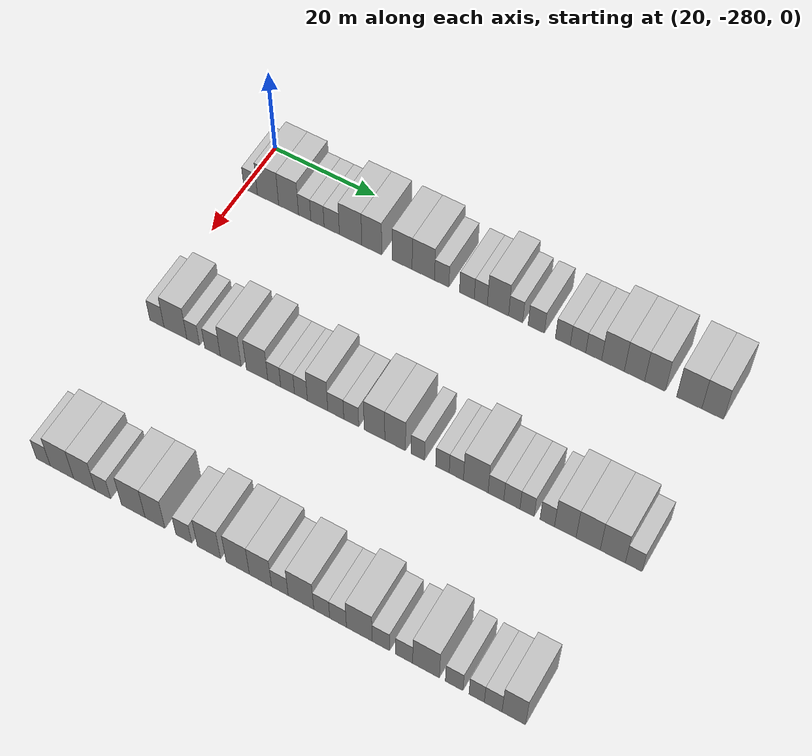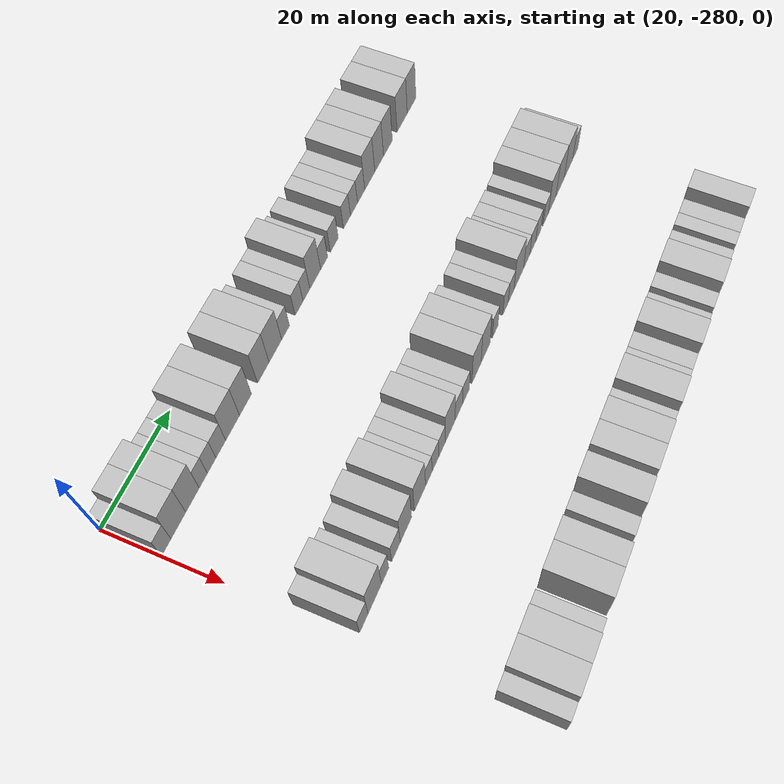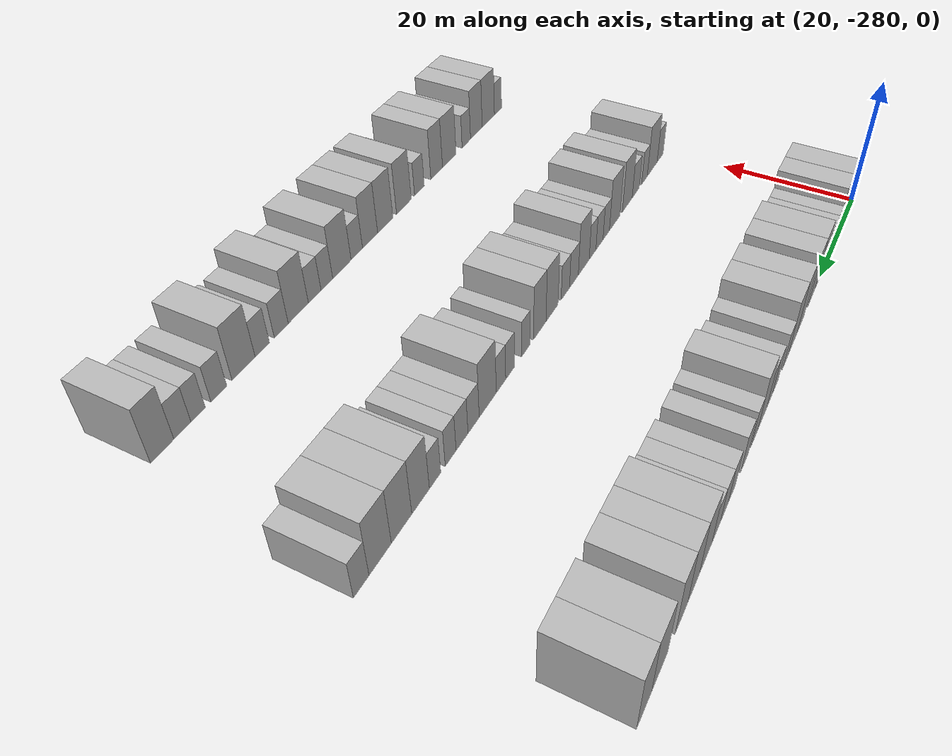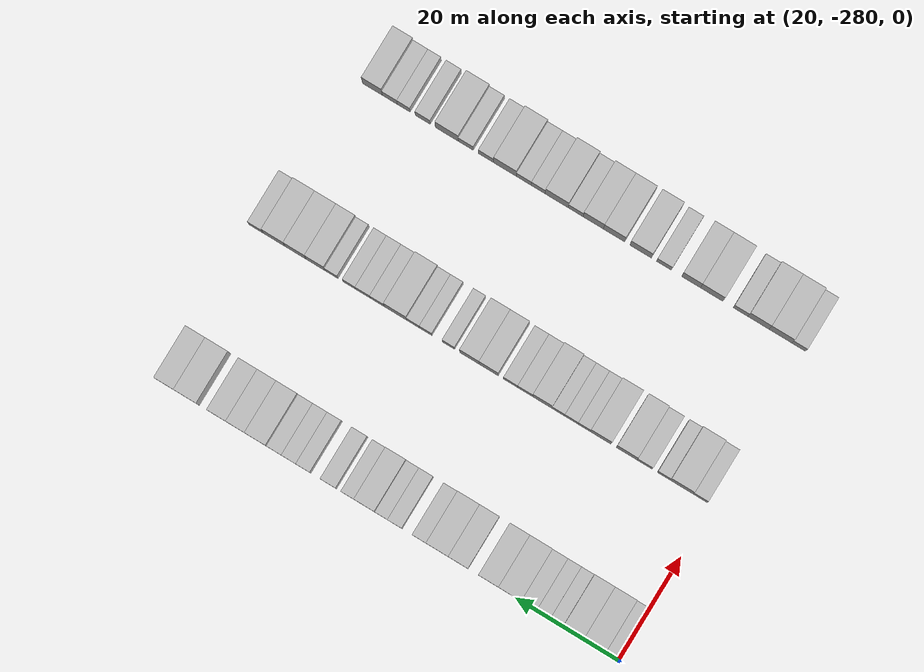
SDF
<sdf version="1.6">
 <world name="default">
  <model name="building_1">
   <static>1</static>
   <pose>25.0000 -278.6493 0 0.000000 0.000000 0.000000</pose>
   <link name="link">
    <pose>0 0 3.00 0 0 0</pose>
    <collision name="collision"><geometry><box><size>10.0000 2.7014 6.0000</size></box></geometry></collision>
    <visual name="visual">
     <cast_shadows>0</cast_shadows>
     <geometry><box><size>10.0000 2.7014 6.0000</size></box></geometry>
     <material>
      <script>
       <uri>model://HANNAS_wall/materials/scripts</uri>
       <uri>model://HANNAS_wall/materials/textures</uri>
       <name>vrc/HANNAS_wall</name>
      </script>
     </material>
    </visual>
   </link>
  </model>
  <model name="building_2">
   <static>1</static>
   <pose>25.0000 -275.1745 0 0.000000 0.000000 0.000000</pose>
   <link name="link">
    <pose>0 0 4.50 0 0 0</pose>
    <collision name="collision"><geometry><box><size>10.0000 4.2482 9.0000</size></box></geometry></collision>
    <visual name="visual">
     <cast_shadows>0</cast_shadows>
     <geometry><box><size>10.0000 4.2482 9.0000</size></box></geometry>
     <material>
      <script>
       <uri>model://HANNAS_wall/materials/scripts</uri>
       <uri>model://HANNAS_wall/materials/textures</uri>
       <name>vrc/HANNAS_wall</name>
      </script>
     </material>
    </visual>
   </link>
  </model>
  <model name="building_3">
   <static>1</static>
   <pose>25.0000 -271.0748 0 0.000000 0.000000 0.000000</pose>
   <link name="link">
    <pose>0 0 4.50 0 0 0</pose>
    <collision name="collision"><geometry><box><size>10.0000 3.9511 9.0000</size></box></geometry></collision>
    <visual name="visual">
     <cast_shadows>0</cast_shadows>
     <geometry><box><size>10.0000 3.9511 9.0000</size></box></geometry>
     <material>
      <script>
       <uri>model://HANNAS_wall/materials/scripts</uri>
       <uri>model://HANNAS_wall/materials/textures</uri>
       <name>vrc/HANNAS_wall</name>
      </script>
     </material>
    </visual>
   </link>
  </model>
  <model name="building_4">
   <static>1</static>
   <pose>25.0000 -267.8792 0 0.000000 0.000000 0.000000</pose>
   <link name="link">
    <pose>0 0 3.00 0 0 0</pose>
    <collision name="collision"><geometry><box><size>10.0000 2.4400 6.0000</size></box></geometry></collision>
    <visual name="visual">
     <cast_shadows>0</cast_shadows>
     <geometry><box><size>10.0000 2.4400 6.0000</size></box></geometry>
     <material>
      <script>
       <uri>model://HANNAS_wall/materials/scripts</uri>
       <uri>model://HANNAS_wall/materials/textures</uri>
       <name>vrc/HANNAS_wall</name>
      </script>
     </material>
    </visual>
   </link>
  </model>
  <model name="building_5">
   <static>1</static>
   <pose>25.0000 -265.3566 0 0.000000 0.000000 0.000000</pose>
   <link name="link">
    <pose>0 0 3.00 0 0 0</pose>
    <collision name="collision"><geometry><box><size>10.0000 2.6051 6.0000</size></box></geometry></collision>
    <visual name="visual">
     <cast_shadows>0</cast_shadows>
     <geometry><box><size>10.0000 2.6051 6.0000</size></box></geometry>
     <material>
      <script>
       <uri>model://HANNAS_wall/materials/scripts</uri>
       <uri>model://HANNAS_wall/materials/textures</uri>
       <name>vrc/HANNAS_wall</name>
      </script>
     </material>
    </visual>
   </link>
  </model>
  <model name="building_6">
   <static>1</static>
   <pose>25.0000 -262.5599 0 0.000000 0.000000 0.000000</pose>
   <link name="link">
    <pose>0 0 3.00 0 0 0</pose>
    <collision name="collision"><geometry><box><size>10.0000 2.9883 6.0000</size></box></geometry></collision>
    <visual name="visual">
     <cast_shadows>0</cast_shadows>
     <geometry><box><size>10.0000 2.9883 6.0000</size></box></geometry>
     <material>
      <script>
       <uri>model://HANNAS_wall/materials/scripts</uri>
       <uri>model://HANNAS_wall/materials/textures</uri>
       <name>vrc/HANNAS_wall</name>
      </script>
     </material>
    </visual>
   </link>
  </model>
  <model name="building_7">
   <static>1</static>
   <pose>25.0000 -258.8811 0 0.000000 0.000000 0.000000</pose>
   <link name="link">
    <pose>0 0 4.50 0 0 0</pose>
    <collision name="collision"><geometry><box><size>10.0000 4.3694 9.0000</size></box></geometry></collision>
    <visual name="visual">
     <cast_shadows>0</cast_shadows>
     <geometry><box><size>10.0000 4.3694 9.0000</size></box></geometry>
     <material>
      <script>
       <uri>model://HANNAS_wall/materials/scripts</uri>
       <uri>model://HANNAS_wall/materials/textures</uri>
       <name>vrc/HANNAS_wall</name>
      </script>
     </material>
    </visual>
   </link>
  </model>
  <model name="building_8">
   <static>1</static>
   <pose>25.0000 -254.7702 0 0.000000 0.000000 0.000000</pose>
   <link name="link">
    <pose>0 0 4.50 0 0 0</pose>
    <collision name="collision"><geometry><box><size>10.0000 3.8524 9.0000</size></box></geometry></collision>
    <visual name="visual">
     <cast_shadows>0</cast_shadows>
     <geometry><box><size>10.0000 3.8524 9.0000</size></box></geometry>
     <material>
      <script>
       <uri>model://HANNAS_wall/materials/scripts</uri>
       <uri>model://HANNAS_wall/materials/textures</uri>
       <name>vrc/HANNAS_wall</name>
      </script>
     </material>
    </visual>
   </link>
  </model>
  <model name="building_9">
   <static>1</static>
   <pose>25.0000 -248.9392 0 0.000000 0.000000 0.000000</pose>
   <link name="link">
    <pose>0 0 4.50 0 0 0</pose>
    <collision name="collision"><geometry><box><size>10.0000 3.8097 9.0000</size></box></geometry></collision>
    <visual name="visual">
     <cast_shadows>0</cast_shadows>
     <geometry><box><size>10.0000 3.8097 9.0000</size></box></geometry>
     <material>
      <script>
       <uri>model://HANNAS_wall/materials/scripts</uri>
       <uri>model://HANNAS_wall/materials/textures</uri>
       <name>vrc/HANNAS_wall</name>
      </script>
     </material>
    </visual>
   </link>
  </model>
  <model name="building_10">
   <static>1</static>
   <pose>25.0000 -244.8986 0 0.000000 0.000000 0.000000</pose>
   <link name="link">
    <pose>0 0 4.50 0 0 0</pose>
    <collision name="collision"><geometry><box><size>10.0000 4.2715 9.0000</size></box></geometry></collision>
    <visual name="visual">
     <cast_shadows>0</cast_shadows>
     <geometry><box><size>10.0000 4.2715 9.0000</size></box></geometry>
     <material>
      <script>
       <uri>model://HANNAS_wall/materials/scripts</uri>
       <uri>model://HANNAS_wall/materials/textures</uri>
       <name>vrc/HANNAS_wall</name>
      </script>
     </material>
    </visual>
   </link>
  </model>
  <model name="building_11">
   <static>1</static>
   <pose>25.0000 -241.4054 0 0.000000 0.000000 0.000000</pose>
   <link name="link">
    <pose>0 0 3.00 0 0 0</pose>
    <collision name="collision"><geometry><box><size>10.0000 2.7150 6.0000</size></box></geometry></collision>
    <visual name="visual">
     <cast_shadows>0</cast_shadows>
     <geometry><box><size>10.0000 2.7150 6.0000</size></box></geometry>
     <material>
      <script>
       <uri>model://HANNAS_wall/materials/scripts</uri>
       <uri>model://HANNAS_wall/materials/textures</uri>
       <name>vrc/HANNAS_wall</name>
      </script>
     </material>
    </visual>
   </link>
  </model>
  <model name="building_12">
   <static>1</static>
   <pose>25.0000 -236.6688 0 0.000000 0.000000 0.000000</pose>
   <link name="link">
    <pose>0 0 3.00 0 0 0</pose>
    <collision name="collision"><geometry><box><size>10.0000 2.7581 6.0000</size></box></geometry></collision>
    <visual name="visual">
     <cast_shadows>0</cast_shadows>
     <geometry><box><size>10.0000 2.7581 6.0000</size></box></geometry>
     <material>
      <script>
       <uri>model://HANNAS_wall/materials/scripts</uri>
       <uri>model://HANNAS_wall/materials/textures</uri>
       <name>vrc/HANNAS_wall</name>
      </script>
     </material>
    </visual>
   </link>
  </model>
  <model name="building_13">
   <static>1</static>
   <pose>25.0000 -234.0657 0 0.000000 0.000000 0.000000</pose>
   <link name="link">
    <pose>0 0 3.00 0 0 0</pose>
    <collision name="collision"><geometry><box><size>10.0000 2.4483 6.0000</size></box></geometry></collision>
    <visual name="visual">
     <cast_shadows>0</cast_shadows>
     <geometry><box><size>10.0000 2.4483 6.0000</size></box></geometry>
     <material>
      <script>
       <uri>model://HANNAS_wall/materials/scripts</uri>
       <uri>model://HANNAS_wall/materials/textures</uri>
       <name>vrc/HANNAS_wall</name>
      </script>
     </material>
    </visual>
   </link>
  </model>
  <model name="building_14">
   <static>1</static>
   <pose>25.0000 -230.8664 0 0.000000 0.000000 0.000000</pose>
   <link name="link">
    <pose>0 0 4.50 0 0 0</pose>
    <collision name="collision"><geometry><box><size>10.0000 3.9503 9.0000</size></box></geometry></collision>
    <visual name="visual">
     <cast_shadows>0</cast_shadows>
     <geometry><box><size>10.0000 3.9503 9.0000</size></box></geometry>
     <material>
      <script>
       <uri>model://HANNAS_wall/materials/scripts</uri>
       <uri>model://HANNAS_wall/materials/textures</uri>
       <name>vrc/HANNAS_wall</name>
      </script>
     </material>
    </visual>
   </link>
  </model>
  <model name="building_15">
   <static>1</static>
   <pose>25.0000 -227.5878 0 0.000000 0.000000 0.000000</pose>
   <link name="link">
    <pose>0 0 3.00 0 0 0</pose>
    <collision name="collision"><geometry><box><size>10.0000 2.6067 6.0000</size></box></geometry></collision>
    <visual name="visual">
     <cast_shadows>0</cast_shadows>
     <geometry><box><size>10.0000 2.6067 6.0000</size></box></geometry>
     <material>
      <script>
       <uri>model://HANNAS_wall/materials/scripts</uri>
       <uri>model://HANNAS_wall/materials/textures</uri>
       <name>vrc/HANNAS_wall</name>
      </script>
     </material>
    </visual>
   </link>
  </model>
  <model name="building_16">
   <static>1</static>
   <pose>25.0000 -223.7880 0 0.000000 0.000000 0.000000</pose>
   <link name="link">
    <pose>0 0 3.00 0 0 0</pose>
    <collision name="collision"><geometry><box><size>10.0000 2.9929 6.0000</size></box></geometry></collision>
    <visual name="visual">
     <cast_shadows>0</cast_shadows>
     <geometry><box><size>10.0000 2.9929 6.0000</size></box></geometry>
     <material>
      <script>
       <uri>model://HANNAS_wall/materials/scripts</uri>
       <uri>model://HANNAS_wall/materials/textures</uri>
       <name>vrc/HANNAS_wall</name>
      </script>
     </material>
    </visual>
   </link>
  </model>
  <model name="building_17">
   <static>1</static>
   <pose>25.0000 -218.9373 0 0.000000 0.000000 0.000000</pose>
   <link name="link">
    <pose>0 0 3.00 0 0 0</pose>
    <collision name="collision"><geometry><box><size>10.0000 2.7085 6.0000</size></box></geometry></collision>
    <visual name="visual">
     <cast_shadows>0</cast_shadows>
     <geometry><box><size>10.0000 2.7085 6.0000</size></box></geometry>
     <material>
      <script>
       <uri>model://HANNAS_wall/materials/scripts</uri>
       <uri>model://HANNAS_wall/materials/textures</uri>
       <name>vrc/HANNAS_wall</name>
      </script>
     </material>
    </visual>
   </link>
  </model>
  <model name="building_18">
   <static>1</static>
   <pose>25.0000 -216.1864 0 0.000000 0.000000 0.000000</pose>
   <link name="link">
    <pose>0 0 3.00 0 0 0</pose>
    <collision name="collision"><geometry><box><size>10.0000 2.7932 6.0000</size></box></geometry></collision>
    <visual name="visual">
     <cast_shadows>0</cast_shadows>
     <geometry><box><size>10.0000 2.7932 6.0000</size></box></geometry>
     <material>
      <script>
       <uri>model://HANNAS_wall/materials/scripts</uri>
       <uri>model://HANNAS_wall/materials/textures</uri>
       <name>vrc/HANNAS_wall</name>
      </script>
     </material>
    </visual>
   </link>
  </model>
  <model name="building_19">
   <static>1</static>
   <pose>25.0000 -213.3558 0 0.000000 0.000000 0.000000</pose>
   <link name="link">
    <pose>0 0 3.00 0 0 0</pose>
    <collision name="collision"><geometry><box><size>10.0000 2.8680 6.0000</size></box></geometry></collision>
    <visual name="visual">
     <cast_shadows>0</cast_shadows>
     <geometry><box><size>10.0000 2.8680 6.0000</size></box></geometry>
     <material>
      <script>
       <uri>model://HANNAS_wall/materials/scripts</uri>
       <uri>model://HANNAS_wall/materials/textures</uri>
       <name>vrc/HANNAS_wall</name>
      </script>
     </material>
    </visual>
   </link>
  </model>
  <model name="building_20">
   <static>1</static>
   <pose>25.0000 -209.8904 0 0.000000 0.000000 0.000000</pose>
   <link name="link">
    <pose>0 0 4.50 0 0 0</pose>
    <collision name="collision"><geometry><box><size>10.0000 4.0627 9.0000</size></box></geometry></collision>
    <visual name="visual">
     <cast_shadows>0</cast_shadows>
     <geometry><box><size>10.0000 4.0627 9.0000</size></box></geometry>
     <material>
      <script>
       <uri>model://HANNAS_wall/materials/scripts</uri>
       <uri>model://HANNAS_wall/materials/textures</uri>
       <name>vrc/HANNAS_wall</name>
      </script>
     </material>
    </visual>
   </link>
  </model>
  <model name="building_21">
   <static>1</static>
   <pose>25.0000 -206.0500 0 0.000000 0.000000 0.000000</pose>
   <link name="link">
    <pose>0 0 4.50 0 0 0</pose>
    <collision name="collision"><geometry><box><size>10.0000 3.6181 9.0000</size></box></geometry></collision>
    <visual name="visual">
     <cast_shadows>0</cast_shadows>
     <geometry><box><size>10.0000 3.6181 9.0000</size></box></geometry>
     <material>
      <script>
       <uri>model://HANNAS_wall/materials/scripts</uri>
       <uri>model://HANNAS_wall/materials/textures</uri>
       <name>vrc/HANNAS_wall</name>
      </script>
     </material>
    </visual>
   </link>
  </model>
  <model name="building_22">
   <static>1</static>
   <pose>25.0000 -202.4100 0 0.000000 0.000000 0.000000</pose>
   <link name="link">
    <pose>0 0 4.50 0 0 0</pose>
    <collision name="collision"><geometry><box><size>10.0000 3.6619 9.0000</size></box></geometry></collision>
    <visual name="visual">
     <cast_shadows>0</cast_shadows>
     <geometry><box><size>10.0000 3.6619 9.0000</size></box></geometry>
     <material>
      <script>
       <uri>model://HANNAS_wall/materials/scripts</uri>
       <uri>model://HANNAS_wall/materials/textures</uri>
       <name>vrc/HANNAS_wall</name>
      </script>
     </material>
    </visual>
   </link>
  </model>
  <model name="building_23">
   <static>1</static>
   <pose>25.0000 -196.3840 0 0.000000 0.000000 0.000000</pose>
   <link name="link">
    <pose>0 0 4.50 0 0 0</pose>
    <collision name="collision"><geometry><box><size>10.0000 4.3901 9.0000</size></box></geometry></collision>
    <visual name="visual">
     <cast_shadows>0</cast_shadows>
     <geometry><box><size>10.0000 4.3901 9.0000</size></box></geometry>
     <material>
      <script>
       <uri>model://HANNAS_wall/materials/scripts</uri>
       <uri>model://HANNAS_wall/materials/textures</uri>
       <name>vrc/HANNAS_wall</name>
      </script>
     </material>
    </visual>
   </link>
  </model>
  <model name="building_24">
   <static>1</static>
   <pose>25.0000 -192.2875 0 0.000000 0.000000 0.000000</pose>
   <link name="link">
    <pose>0 0 4.50 0 0 0</pose>
    <collision name="collision"><geometry><box><size>10.0000 3.8027 9.0000</size></box></geometry></collision>
    <visual name="visual">
     <cast_shadows>0</cast_shadows>
     <geometry><box><size>10.0000 3.8027 9.0000</size></box></geometry>
     <material>
      <script>
       <uri>model://HANNAS_wall/materials/scripts</uri>
       <uri>model://HANNAS_wall/materials/textures</uri>
       <name>vrc/HANNAS_wall</name>
      </script>
     </material>
    </visual>
   </link>
  </model>
  <model name="building_150">
   <static>1</static>
   <pose>55.0000 -277.6123 0 0.000000 0.000000 0.000000</pose>
   <link name="link">
    <pose>0 0 3.00 0 0 0</pose>
    <collision name="collision"><geometry><box><size>10.0000 2.7754 6.0000</size></box></geometry></collision>
    <visual name="visual">
     <cast_shadows>0</cast_shadows>
     <geometry><box><size>10.0000 2.7754 6.0000</size></box></geometry>
     <material>
      <script>
       <uri>model://HANNAS_wall/materials/scripts</uri>
       <uri>model://HANNAS_wall/materials/textures</uri>
       <name>vrc/HANNAS_wall</name>
      </script>
     </material>
    </visual>
   </link>
  </model>
  <model name="building_151">
   <static>1</static>
   <pose>55.0000 -274.0129 0 0.000000 0.000000 0.000000</pose>
   <link name="link">
    <pose>0 0 4.50 0 0 0</pose>
    <collision name="collision"><geometry><box><size>10.0000 4.4235 9.0000</size></box></geometry></collision>
    <visual name="visual">
     <cast_shadows>0</cast_shadows>
     <geometry><box><size>10.0000 4.4235 9.0000</size></box></geometry>
     <material>
      <script>
       <uri>model://HANNAS_wall/materials/scripts</uri>
       <uri>model://HANNAS_wall/materials/textures</uri>
       <name>vrc/HANNAS_wall</name>
      </script>
     </material>
    </visual>
   </link>
  </model>
  <model name="building_152">
   <static>1</static>
   <pose>55.0000 -270.5724 0 0.000000 0.000000 0.000000</pose>
   <link name="link">
    <pose>0 0 3.00 0 0 0</pose>
    <collision name="collision"><geometry><box><size>10.0000 2.4574 6.0000</size></box></geometry></collision>
    <visual name="visual">
     <cast_shadows>0</cast_shadows>
     <geometry><box><size>10.0000 2.4574 6.0000</size></box></geometry>
     <material>
      <script>
       <uri>model://HANNAS_wall/materials/scripts</uri>
       <uri>model://HANNAS_wall/materials/textures</uri>
       <name>vrc/HANNAS_wall</name>
      </script>
     </material>
    </visual>
   </link>
  </model>
  <model name="building_153">
   <static>1</static>
   <pose>55.0000 -266.8569 0 0.000000 0.000000 0.000000</pose>
   <link name="link">
    <pose>0 0 3.00 0 0 0</pose>
    <collision name="collision"><geometry><box><size>10.0000 2.9737 6.0000</size></box></geometry></collision>
    <visual name="visual">
     <cast_shadows>0</cast_shadows>
     <geometry><box><size>10.0000 2.9737 6.0000</size></box></geometry>
     <material>
      <script>
       <uri>model://HANNAS_wall/materials/scripts</uri>
       <uri>model://HANNAS_wall/materials/textures</uri>
       <name>vrc/HANNAS_wall</name>
      </script>
     </material>
    </visual>
   </link>
  </model>
  <model name="building_154">
   <static>1</static>
   <pose>55.0000 -263.3741 0 0.000000 0.000000 0.000000</pose>
   <link name="link">
    <pose>0 0 4.50 0 0 0</pose>
    <collision name="collision"><geometry><box><size>10.0000 3.9918 9.0000</size></box></geometry></collision>
    <visual name="visual">
     <cast_shadows>0</cast_shadows>
     <geometry><box><size>10.0000 3.9918 9.0000</size></box></geometry>
     <material>
      <script>
       <uri>model://HANNAS_wall/materials/scripts</uri>
       <uri>model://HANNAS_wall/materials/textures</uri>
       <name>vrc/HANNAS_wall</name>
      </script>
     </material>
    </visual>
   </link>
  </model>
  <model name="building_155">
   <static>1</static>
   <pose>55.0000 -258.3545 0 0.000000 0.000000 0.000000</pose>
   <link name="link">
    <pose>0 0 4.50 0 0 0</pose>
    <collision name="collision"><geometry><box><size>10.0000 4.0473 9.0000</size></box></geometry></collision>
    <visual name="visual">
     <cast_shadows>0</cast_shadows>
     <geometry><box><size>10.0000 4.0473 9.0000</size></box></geometry>
     <material>
      <script>
       <uri>model://HANNAS_wall/materials/scripts</uri>
       <uri>model://HANNAS_wall/materials/textures</uri>
       <name>vrc/HANNAS_wall</name>
      </script>
     </material>
    </visual>
   </link>
  </model>
  <model name="building_156">
   <static>1</static>
   <pose>55.0000 -255.1210 0 0.000000 0.000000 0.000000</pose>
   <link name="link">
    <pose>0 0 3.00 0 0 0</pose>
    <collision name="collision"><geometry><box><size>10.0000 2.4197 6.0000</size></box></geometry></collision>
    <visual name="visual">
     <cast_shadows>0</cast_shadows>
     <geometry><box><size>10.0000 2.4197 6.0000</size></box></geometry>
     <material>
      <script>
       <uri>model://HANNAS_wall/materials/scripts</uri>
       <uri>model://HANNAS_wall/materials/textures</uri>
       <name>vrc/HANNAS_wall</name>
      </script>
     </material>
    </visual>
   </link>
  </model>
  <model name="building_157">
   <static>1</static>
   <pose>55.0000 -252.6181 0 0.000000 0.000000 0.000000</pose>
   <link name="link">
    <pose>0 0 3.00 0 0 0</pose>
    <collision name="collision"><geometry><box><size>10.0000 2.5862 6.0000</size></box></geometry></collision>
    <visual name="visual">
     <cast_shadows>0</cast_shadows>
     <geometry><box><size>10.0000 2.5862 6.0000</size></box></geometry>
     <material>
      <script>
       <uri>model://HANNAS_wall/materials/scripts</uri>
       <uri>model://HANNAS_wall/materials/textures</uri>
       <name>vrc/HANNAS_wall</name>
      </script>
     </material>
    </visual>
   </link>
  </model>
  <model name="building_158">
   <static>1</static>
   <pose>55.0000 -250.1249 0 0.000000 0.000000 0.000000</pose>
   <link name="link">
    <pose>0 0 3.00 0 0 0</pose>
    <collision name="collision"><geometry><box><size>10.0000 2.4002 6.0000</size></box></geometry></collision>
    <visual name="visual">
     <cast_shadows>0</cast_shadows>
     <geometry><box><size>10.0000 2.4002 6.0000</size></box></geometry>
     <material>
      <script>
       <uri>model://HANNAS_wall/materials/scripts</uri>
       <uri>model://HANNAS_wall/materials/textures</uri>
       <name>vrc/HANNAS_wall</name>
      </script>
     </material>
    </visual>
   </link>
  </model>
  <model name="building_159">
   <static>1</static>
   <pose>55.0000 -247.0327 0 0.000000 0.000000 0.000000</pose>
   <link name="link">
    <pose>0 0 4.50 0 0 0</pose>
    <collision name="collision"><geometry><box><size>10.0000 3.7841 9.0000</size></box></geometry></collision>
    <visual name="visual">
     <cast_shadows>0</cast_shadows>
     <geometry><box><size>10.0000 3.7841 9.0000</size></box></geometry>
     <material>
      <script>
       <uri>model://HANNAS_wall/materials/scripts</uri>
       <uri>model://HANNAS_wall/materials/textures</uri>
       <name>vrc/HANNAS_wall</name>
      </script>
     </material>
    </visual>
   </link>
  </model>
  <model name="building_160">
   <static>1</static>
   <pose>55.0000 -243.6698 0 0.000000 0.000000 0.000000</pose>
   <link name="link">
    <pose>0 0 3.00 0 0 0</pose>
    <collision name="collision"><geometry><box><size>10.0000 2.9418 6.0000</size></box></geometry></collision>
    <visual name="visual">
     <cast_shadows>0</cast_shadows>
     <geometry><box><size>10.0000 2.9418 6.0000</size></box></geometry>
     <material>
      <script>
       <uri>model://HANNAS_wall/materials/scripts</uri>
       <uri>model://HANNAS_wall/materials/textures</uri>
       <name>vrc/HANNAS_wall</name>
      </script>
     </material>
    </visual>
   </link>
  </model>
  <model name="building_161">
   <static>1</static>
   <pose>55.0000 -240.8266 0 0.000000 0.000000 0.000000</pose>
   <link name="link">
    <pose>0 0 3.00 0 0 0</pose>
    <collision name="collision"><geometry><box><size>10.0000 2.7446 6.0000</size></box></geometry></collision>
    <visual name="visual">
     <cast_shadows>0</cast_shadows>
     <geometry><box><size>10.0000 2.7446 6.0000</size></box></geometry>
     <material>
      <script>
       <uri>model://HANNAS_wall/materials/scripts</uri>
       <uri>model://HANNAS_wall/materials/textures</uri>
       <name>vrc/HANNAS_wall</name>
      </script>
     </material>
    </visual>
   </link>
  </model>
  <model name="building_162">
   <static>1</static>
   <pose>55.0000 -236.5833 0 0.000000 0.000000 0.000000</pose>
   <link name="link">
    <pose>0 0 4.50 0 0 0</pose>
    <collision name="collision"><geometry><box><size>10.0000 3.7420 9.0000</size></box></geometry></collision>
    <visual name="visual">
     <cast_shadows>0</cast_shadows>
     <geometry><box><size>10.0000 3.7420 9.0000</size></box></geometry>
     <material>
      <script>
       <uri>model://HANNAS_wall/materials/scripts</uri>
       <uri>model://HANNAS_wall/materials/textures</uri>
       <name>vrc/HANNAS_wall</name>
      </script>
     </material>
    </visual>
   </link>
  </model>
  <model name="building_163">
   <static>1</static>
   <pose>55.0000 -232.8422 0 0.000000 0.000000 0.000000</pose>
   <link name="link">
    <pose>0 0 4.50 0 0 0</pose>
    <collision name="collision"><geometry><box><size>10.0000 3.7404 9.0000</size></box></geometry></collision>
    <visual name="visual">
     <cast_shadows>0</cast_shadows>
     <geometry><box><size>10.0000 3.7404 9.0000</size></box></geometry>
     <material>
      <script>
       <uri>model://HANNAS_wall/materials/scripts</uri>
       <uri>model://HANNAS_wall/materials/textures</uri>
       <name>vrc/HANNAS_wall</name>
      </script>
     </material>
    </visual>
   </link>
  </model>
  <model name="building_164">
   <static>1</static>
   <pose>55.0000 -228.7698 0 0.000000 0.000000 0.000000</pose>
   <link name="link">
    <pose>0 0 3.00 0 0 0</pose>
    <collision name="collision"><geometry><box><size>10.0000 2.4043 6.0000</size></box></geometry></collision>
    <visual name="visual">
     <cast_shadows>0</cast_shadows>
     <geometry><box><size>10.0000 2.4043 6.0000</size></box></geometry>
     <material>
      <script>
       <uri>model://HANNAS_wall/materials/scripts</uri>
       <uri>model://HANNAS_wall/materials/textures</uri>
       <name>vrc/HANNAS_wall</name>
      </script>
     </material>
    </visual>
   </link>
  </model>
  <model name="building_165">
   <static>1</static>
   <pose>55.0000 -224.3639 0 0.000000 0.000000 0.000000</pose>
   <link name="link">
    <pose>0 0 3.00 0 0 0</pose>
    <collision name="collision"><geometry><box><size>10.0000 2.4076 6.0000</size></box></geometry></collision>
    <visual name="visual">
     <cast_shadows>0</cast_shadows>
     <geometry><box><size>10.0000 2.4076 6.0000</size></box></geometry>
     <material>
      <script>
       <uri>model://HANNAS_wall/materials/scripts</uri>
       <uri>model://HANNAS_wall/materials/textures</uri>
       <name>vrc/HANNAS_wall</name>
      </script>
     </material>
    </visual>
   </link>
  </model>
  <model name="building_166">
   <static>1</static>
   <pose>55.0000 -221.9030 0 0.000000 0.000000 0.000000</pose>
   <link name="link">
    <pose>0 0 3.00 0 0 0</pose>
    <collision name="collision"><geometry><box><size>10.0000 2.5141 6.0000</size></box></geometry></collision>
    <visual name="visual">
     <cast_shadows>0</cast_shadows>
     <geometry><box><size>10.0000 2.5141 6.0000</size></box></geometry>
     <material>
      <script>
       <uri>model://HANNAS_wall/materials/scripts</uri>
       <uri>model://HANNAS_wall/materials/textures</uri>
       <name>vrc/HANNAS_wall</name>
      </script>
     </material>
    </visual>
   </link>
  </model>
  <model name="building_167">
   <static>1</static>
   <pose>55.0000 -218.4747 0 0.000000 0.000000 0.000000</pose>
   <link name="link">
    <pose>0 0 4.50 0 0 0</pose>
    <collision name="collision"><geometry><box><size>10.0000 4.3426 9.0000</size></box></geometry></collision>
    <visual name="visual">
     <cast_shadows>0</cast_shadows>
     <geometry><box><size>10.0000 4.3426 9.0000</size></box></geometry>
     <material>
      <script>
       <uri>model://HANNAS_wall/materials/scripts</uri>
       <uri>model://HANNAS_wall/materials/textures</uri>
       <name>vrc/HANNAS_wall</name>
      </script>
     </material>
    </visual>
   </link>
  </model>
  <model name="building_168">
   <static>1</static>
   <pose>55.0000 -214.9300 0 0.000000 0.000000 0.000000</pose>
   <link name="link">
    <pose>0 0 3.00 0 0 0</pose>
    <collision name="collision"><geometry><box><size>10.0000 2.7469 6.0000</size></box></geometry></collision>
    <visual name="visual">
     <cast_shadows>0</cast_shadows>
     <geometry><box><size>10.0000 2.7469 6.0000</size></box></geometry>
     <material>
      <script>
       <uri>model://HANNAS_wall/materials/scripts</uri>
       <uri>model://HANNAS_wall/materials/textures</uri>
       <name>vrc/HANNAS_wall</name>
      </script>
     </material>
    </visual>
   </link>
  </model>
  <model name="building_169">
   <static>1</static>
   <pose>55.0000 -212.1513 0 0.000000 0.000000 0.000000</pose>
   <link name="link">
    <pose>0 0 3.00 0 0 0</pose>
    <collision name="collision"><geometry><box><size>10.0000 2.8104 6.0000</size></box></geometry></collision>
    <visual name="visual">
     <cast_shadows>0</cast_shadows>
     <geometry><box><size>10.0000 2.8104 6.0000</size></box></geometry>
     <material>
      <script>
       <uri>model://HANNAS_wall/materials/scripts</uri>
       <uri>model://HANNAS_wall/materials/textures</uri>
       <name>vrc/HANNAS_wall</name>
      </script>
     </material>
    </visual>
   </link>
  </model>
  <model name="building_170">
   <static>1</static>
   <pose>55.0000 -209.5048 0 0.000000 0.000000 0.000000</pose>
   <link name="link">
    <pose>0 0 3.00 0 0 0</pose>
    <collision name="collision"><geometry><box><size>10.0000 2.4826 6.0000</size></box></geometry></collision>
    <visual name="visual">
     <cast_shadows>0</cast_shadows>
     <geometry><box><size>10.0000 2.4826 6.0000</size></box></geometry>
     <material>
      <script>
       <uri>model://HANNAS_wall/materials/scripts</uri>
       <uri>model://HANNAS_wall/materials/textures</uri>
       <name>vrc/HANNAS_wall</name>
      </script>
     </material>
    </visual>
   </link>
  </model>
  <model name="building_171">
   <static>1</static>
   <pose>55.0000 -206.0231 0 0.000000 0.000000 0.000000</pose>
   <link name="link">
    <pose>0 0 3.00 0 0 0</pose>
    <collision name="collision"><geometry><box><size>10.0000 2.4807 6.0000</size></box></geometry></collision>
    <visual name="visual">
     <cast_shadows>0</cast_shadows>
     <geometry><box><size>10.0000 2.4807 6.0000</size></box></geometry>
     <material>
      <script>
       <uri>model://HANNAS_wall/materials/scripts</uri>
       <uri>model://HANNAS_wall/materials/textures</uri>
       <name>vrc/HANNAS_wall</name>
      </script>
     </material>
    </visual>
   </link>
  </model>
  <model name="building_172">
   <static>1</static>
   <pose>55.0000 -202.9312 0 0.000000 0.000000 0.000000</pose>
   <link name="link">
    <pose>0 0 4.50 0 0 0</pose>
    <collision name="collision"><geometry><box><size>10.0000 3.7030 9.0000</size></box></geometry></collision>
    <visual name="visual">
     <cast_shadows>0</cast_shadows>
     <geometry><box><size>10.0000 3.7030 9.0000</size></box></geometry>
     <material>
      <script>
       <uri>model://HANNAS_wall/materials/scripts</uri>
       <uri>model://HANNAS_wall/materials/textures</uri>
       <name>vrc/HANNAS_wall</name>
      </script>
     </material>
    </visual>
   </link>
  </model>
  <model name="building_173">
   <static>1</static>
   <pose>55.0000 -199.0269 0 0.000000 0.000000 0.000000</pose>
   <link name="link">
    <pose>0 0 4.50 0 0 0</pose>
    <collision name="collision"><geometry><box><size>10.0000 4.1057 9.0000</size></box></geometry></collision>
    <visual name="visual">
     <cast_shadows>0</cast_shadows>
     <geometry><box><size>10.0000 4.1057 9.0000</size></box></geometry>
     <material>
      <script>
       <uri>model://HANNAS_wall/materials/scripts</uri>
       <uri>model://HANNAS_wall/materials/textures</uri>
       <name>vrc/HANNAS_wall</name>
      </script>
     </material>
    </visual>
   </link>
  </model>
  <model name="building_174">
   <static>1</static>
   <pose>55.0000 -194.8554 0 0.000000 0.000000 0.000000</pose>
   <link name="link">
    <pose>0 0 4.50 0 0 0</pose>
    <collision name="collision"><geometry><box><size>10.0000 4.2373 9.0000</size></box></geometry></collision>
    <visual name="visual">
     <cast_shadows>0</cast_shadows>
     <geometry><box><size>10.0000 4.2373 9.0000</size></box></geometry>
     <material>
      <script>
       <uri>model://HANNAS_wall/materials/scripts</uri>
       <uri>model://HANNAS_wall/materials/textures</uri>
       <name>vrc/HANNAS_wall</name>
      </script>
     </material>
    </visual>
   </link>
  </model>
  <model name="building_175">
   <static>1</static>
   <pose>55.0000 -191.3228 0 0.000000 0.000000 0.000000</pose>
   <link name="link">
    <pose>0 0 3.00 0 0 0</pose>
    <collision name="collision"><geometry><box><size>10.0000 2.8278 6.0000</size></box></geometry></collision>
    <visual name="visual">
     <cast_shadows>0</cast_shadows>
     <geometry><box><size>10.0000 2.8278 6.0000</size></box></geometry>
     <material>
      <script>
       <uri>model://HANNAS_wall/materials/scripts</uri>
       <uri>model://HANNAS_wall/materials/textures</uri>
       <name>vrc/HANNAS_wall</name>
      </script>
     </material>
    </visual>
   </link>
  </model>
  <model name="building_296">
   <static>1</static>
   <pose>85.0000 -278.6677 0 0.000000 0.000000 0.000000</pose>
   <link name="link">
    <pose>0 0 3.00 0 0 0</pose>
    <collision name="collision"><geometry><box><size>10.0000 2.6645 6.0000</size></box></geometry></collision>
    <visual name="visual">
     <cast_shadows>0</cast_shadows>
     <geometry><box><size>10.0000 2.6645 6.0000</size></box></geometry>
     <material>
      <script>
       <uri>model://HANNAS_wall/materials/scripts</uri>
       <uri>model://HANNAS_wall/materials/textures</uri>
       <name>vrc/HANNAS_wall</name>
      </script>
     </material>
    </visual>
   </link>
  </model>
  <model name="building_297">
   <static>1</static>
   <pose>85.0000 -275.1176 0 0.000000 0.000000 0.000000</pose>
   <link name="link">
    <pose>0 0 4.50 0 0 0</pose>
    <collision name="collision"><geometry><box><size>10.0000 4.4358 9.0000</size></box></geometry></collision>
    <visual name="visual">
     <cast_shadows>0</cast_shadows>
     <geometry><box><size>10.0000 4.4358 9.0000</size></box></geometry>
     <material>
      <script>
       <uri>model://HANNAS_wall/materials/scripts</uri>
       <uri>model://HANNAS_wall/materials/textures</uri>
       <name>vrc/HANNAS_wall</name>
      </script>
     </material>
    </visual>
   </link>
  </model>
  <model name="building_298">
   <static>1</static>
   <pose>85.0000 -270.8677 0 0.000000 0.000000 0.000000</pose>
   <link name="link">
    <pose>0 0 4.50 0 0 0</pose>
    <collision name="collision"><geometry><box><size>10.0000 4.0639 9.0000</size></box></geometry></collision>
    <visual name="visual">
     <cast_shadows>0</cast_shadows>
     <geometry><box><size>10.0000 4.0639 9.0000</size></box></geometry>
     <material>
      <script>
       <uri>model://HANNAS_wall/materials/scripts</uri>
       <uri>model://HANNAS_wall/materials/textures</uri>
       <name>vrc/HANNAS_wall</name>
      </script>
     </material>
    </visual>
   </link>
  </model>
  <model name="building_299">
   <static>1</static>
   <pose>85.0000 -267.4031 0 0.000000 0.000000 0.000000</pose>
   <link name="link">
    <pose>0 0 3.00 0 0 0</pose>
    <collision name="collision"><geometry><box><size>10.0000 2.8653 6.0000</size></box></geometry></collision>
    <visual name="visual">
     <cast_shadows>0</cast_shadows>
     <geometry><box><size>10.0000 2.8653 6.0000</size></box></geometry>
     <material>
      <script>
       <uri>model://HANNAS_wall/materials/scripts</uri>
       <uri>model://HANNAS_wall/materials/textures</uri>
       <name>vrc/HANNAS_wall</name>
      </script>
     </material>
    </visual>
   </link>
  </model>
  <model name="building_300">
   <static>1</static>
   <pose>85.0000 -261.7795 0 0.000000 0.000000 0.000000</pose>
   <link name="link">
    <pose>0 0 4.50 0 0 0</pose>
    <collision name="collision"><geometry><box><size>10.0000 4.3819 9.0000</size></box></geometry></collision>
    <visual name="visual">
     <cast_shadows>0</cast_shadows>
     <geometry><box><size>10.0000 4.3819 9.0000</size></box></geometry>
     <material>
      <script>
       <uri>model://HANNAS_wall/materials/scripts</uri>
       <uri>model://HANNAS_wall/materials/textures</uri>
       <name>vrc/HANNAS_wall</name>
      </script>
     </material>
    </visual>
   </link>
  </model>
  <model name="building_301">
   <static>1</static>
   <pose>85.0000 -257.7701 0 0.000000 0.000000 0.000000</pose>
   <link name="link">
    <pose>0 0 4.50 0 0 0</pose>
    <collision name="collision"><geometry><box><size>10.0000 3.6369 9.0000</size></box></geometry></collision>
    <visual name="visual">
     <cast_shadows>0</cast_shadows>
     <geometry><box><size>10.0000 3.6369 9.0000</size></box></geometry>
     <material>
      <script>
       <uri>model://HANNAS_wall/materials/scripts</uri>
       <uri>model://HANNAS_wall/materials/textures</uri>
       <name>vrc/HANNAS_wall</name>
      </script>
     </material>
    </visual>
   </link>
  </model>
  <model name="building_302">
   <static>1</static>
   <pose>85.0000 -252.5083 0 0.000000 0.000000 0.000000</pose>
   <link name="link">
    <pose>0 0 3.00 0 0 0</pose>
    <collision name="collision"><geometry><box><size>10.0000 2.8866 6.0000</size></box></geometry></collision>
    <visual name="visual">
     <cast_shadows>0</cast_shadows>
     <geometry><box><size>10.0000 2.8866 6.0000</size></box></geometry>
     <material>
      <script>
       <uri>model://HANNAS_wall/materials/scripts</uri>
       <uri>model://HANNAS_wall/materials/textures</uri>
       <name>vrc/HANNAS_wall</name>
      </script>
     </material>
    </visual>
   </link>
  </model>
  <model name="building_303">
   <static>1</static>
   <pose>85.0000 -247.9673 0 0.000000 0.000000 0.000000</pose>
   <link name="link">
    <pose>0 0 4.50 0 0 0</pose>
    <collision name="collision"><geometry><box><size>10.0000 4.1955 9.0000</size></box></geometry></collision>
    <visual name="visual">
     <cast_shadows>0</cast_shadows>
     <geometry><box><size>10.0000 4.1955 9.0000</size></box></geometry>
     <material>
      <script>
       <uri>model://HANNAS_wall/materials/scripts</uri>
       <uri>model://HANNAS_wall/materials/textures</uri>
       <name>vrc/HANNAS_wall</name>
      </script>
     </material>
    </visual>
   </link>
  </model>
  <model name="building_304">
   <static>1</static>
   <pose>85.0000 -242.8003 0 0.000000 0.000000 0.000000</pose>
   <link name="link">
    <pose>0 0 4.50 0 0 0</pose>
    <collision name="collision"><geometry><box><size>10.0000 4.1385 9.0000</size></box></geometry></collision>
    <visual name="visual">
     <cast_shadows>0</cast_shadows>
     <geometry><box><size>10.0000 4.1385 9.0000</size></box></geometry>
     <material>
      <script>
       <uri>model://HANNAS_wall/materials/scripts</uri>
       <uri>model://HANNAS_wall/materials/textures</uri>
       <name>vrc/HANNAS_wall</name>
      </script>
     </material>
    </visual>
   </link>
  </model>
  <model name="building_305">
   <static>1</static>
   <pose>85.0000 -238.7529 0 0.000000 0.000000 0.000000</pose>
   <link name="link">
    <pose>0 0 4.50 0 0 0</pose>
    <collision name="collision"><geometry><box><size>10.0000 3.9563 9.0000</size></box></geometry></collision>
    <visual name="visual">
     <cast_shadows>0</cast_shadows>
     <geometry><box><size>10.0000 3.9563 9.0000</size></box></geometry>
     <material>
      <script>
       <uri>model://HANNAS_wall/materials/scripts</uri>
       <uri>model://HANNAS_wall/materials/textures</uri>
       <name>vrc/HANNAS_wall</name>
      </script>
     </material>
    </visual>
   </link>
  </model>
  <model name="building_306">
   <static>1</static>
   <pose>85.0000 -235.3195 0 0.000000 0.000000 0.000000</pose>
   <link name="link">
    <pose>0 0 3.00 0 0 0</pose>
    <collision name="collision"><geometry><box><size>10.0000 2.9106 6.0000</size></box></geometry></collision>
    <visual name="visual">
     <cast_shadows>0</cast_shadows>
     <geometry><box><size>10.0000 2.9106 6.0000</size></box></geometry>
     <material>
      <script>
       <uri>model://HANNAS_wall/materials/scripts</uri>
       <uri>model://HANNAS_wall/materials/textures</uri>
       <name>vrc/HANNAS_wall</name>
      </script>
     </material>
    </visual>
   </link>
  </model>
  <model name="building_307">
   <static>1</static>
   <pose>85.0000 -231.6271 0 0.000000 0.000000 0.000000</pose>
   <link name="link">
    <pose>0 0 4.50 0 0 0</pose>
    <collision name="collision"><geometry><box><size>10.0000 4.4742 9.0000</size></box></geometry></collision>
    <visual name="visual">
     <cast_shadows>0</cast_shadows>
     <geometry><box><size>10.0000 4.4742 9.0000</size></box></geometry>
     <material>
      <script>
       <uri>model://HANNAS_wall/materials/scripts</uri>
       <uri>model://HANNAS_wall/materials/textures</uri>
       <name>vrc/HANNAS_wall</name>
      </script>
     </material>
    </visual>
   </link>
  </model>
  <model name="building_308">
   <static>1</static>
   <pose>85.0000 -228.0128 0 0.000000 0.000000 0.000000</pose>
   <link name="link">
    <pose>0 0 3.00 0 0 0</pose>
    <collision name="collision"><geometry><box><size>10.0000 2.7544 6.0000</size></box></geometry></collision>
    <visual name="visual">
     <cast_shadows>0</cast_shadows>
     <geometry><box><size>10.0000 2.7544 6.0000</size></box></geometry>
     <material>
      <script>
       <uri>model://HANNAS_wall/materials/scripts</uri>
       <uri>model://HANNAS_wall/materials/textures</uri>
       <name>vrc/HANNAS_wall</name>
      </script>
     </material>
    </visual>
   </link>
  </model>
  <model name="building_309">
   <static>1</static>
   <pose>85.0000 -225.1880 0 0.000000 0.000000 0.000000</pose>
   <link name="link">
    <pose>0 0 3.00 0 0 0</pose>
    <collision name="collision"><geometry><box><size>10.0000 2.8953 6.0000</size></box></geometry></collision>
    <visual name="visual">
     <cast_shadows>0</cast_shadows>
     <geometry><box><size>10.0000 2.8953 6.0000</size></box></geometry>
     <material>
      <script>
       <uri>model://HANNAS_wall/materials/scripts</uri>
       <uri>model://HANNAS_wall/materials/textures</uri>
       <name>vrc/HANNAS_wall</name>
      </script>
     </material>
    </visual>
   </link>
  </model>
  <model name="building_310">
   <static>1</static>
   <pose>85.0000 -221.5275 0 0.000000 0.000000 0.000000</pose>
   <link name="link">
    <pose>0 0 4.50 0 0 0</pose>
    <collision name="collision"><geometry><box><size>10.0000 4.4256 9.0000</size></box></geometry></collision>
    <visual name="visual">
     <cast_shadows>0</cast_shadows>
     <geometry><box><size>10.0000 4.4256 9.0000</size></box></geometry>
     <material>
      <script>
       <uri>model://HANNAS_wall/materials/scripts</uri>
       <uri>model://HANNAS_wall/materials/textures</uri>
       <name>vrc/HANNAS_wall</name>
      </script>
     </material>
    </visual>
   </link>
  </model>
  <model name="building_311">
   <static>1</static>
   <pose>85.0000 -217.8360 0 0.000000 0.000000 0.000000</pose>
   <link name="link">
    <pose>0 0 3.00 0 0 0</pose>
    <collision name="collision"><geometry><box><size>10.0000 2.9575 6.0000</size></box></geometry></collision>
    <visual name="visual">
     <cast_shadows>0</cast_shadows>
     <geometry><box><size>10.0000 2.9575 6.0000</size></box></geometry>
     <material>
      <script>
       <uri>model://HANNAS_wall/materials/scripts</uri>
       <uri>model://HANNAS_wall/materials/textures</uri>
       <name>vrc/HANNAS_wall</name>
      </script>
     </material>
    </visual>
   </link>
  </model>
  <model name="building_312">
   <static>1</static>
   <pose>85.0000 -213.9104 0 0.000000 0.000000 0.000000</pose>
   <link name="link">
    <pose>0 0 3.00 0 0 0</pose>
    <collision name="collision"><geometry><box><size>10.0000 2.8938 6.0000</size></box></geometry></collision>
    <visual name="visual">
     <cast_shadows>0</cast_shadows>
     <geometry><box><size>10.0000 2.8938 6.0000</size></box></geometry>
     <material>
      <script>
       <uri>model://HANNAS_wall/materials/scripts</uri>
       <uri>model://HANNAS_wall/materials/textures</uri>
       <name>vrc/HANNAS_wall</name>
      </script>
     </material>
    </visual>
   </link>
  </model>
  <model name="building_313">
   <static>1</static>
   <pose>85.0000 -210.2207 0 0.000000 0.000000 0.000000</pose>
   <link name="link">
    <pose>0 0 4.50 0 0 0</pose>
    <collision name="collision"><geometry><box><size>10.0000 4.4855 9.0000</size></box></geometry></collision>
    <visual name="visual">
     <cast_shadows>0</cast_shadows>
     <geometry><box><size>10.0000 4.4855 9.0000</size></box></geometry>
     <material>
      <script>
       <uri>model://HANNAS_wall/materials/scripts</uri>
       <uri>model://HANNAS_wall/materials/textures</uri>
       <name>vrc/HANNAS_wall</name>
      </script>
     </material>
    </visual>
   </link>
  </model>
  <model name="building_314">
   <static>1</static>
   <pose>85.0000 -205.5142 0 0.000000 0.000000 0.000000</pose>
   <link name="link">
    <pose>0 0 3.00 0 0 0</pose>
    <collision name="collision"><geometry><box><size>10.0000 2.9276 6.0000</size></box></geometry></collision>
    <visual name="visual">
     <cast_shadows>0</cast_shadows>
     <geometry><box><size>10.0000 2.9276 6.0000</size></box></geometry>
     <material>
      <script>
       <uri>model://HANNAS_wall/materials/scripts</uri>
       <uri>model://HANNAS_wall/materials/textures</uri>
       <name>vrc/HANNAS_wall</name>
      </script>
     </material>
    </visual>
   </link>
  </model>
  <model name="building_315">
   <static>1</static>
   <pose>85.0000 -201.7867 0 0.000000 0.000000 0.000000</pose>
   <link name="link">
    <pose>0 0 3.00 0 0 0</pose>
    <collision name="collision"><geometry><box><size>10.0000 2.5274 6.0000</size></box></geometry></collision>
    <visual name="visual">
     <cast_shadows>0</cast_shadows>
     <geometry><box><size>10.0000 2.5274 6.0000</size></box></geometry>
     <material>
      <script>
       <uri>model://HANNAS_wall/materials/scripts</uri>
       <uri>model://HANNAS_wall/materials/textures</uri>
       <name>vrc/HANNAS_wall</name>
      </script>
     </material>
    </visual>
   </link>
  </model>
  <model name="building_316">
   <static>1</static>
   <pose>85.0000 -199.0680 0 0.000000 0.000000 0.000000</pose>
   <link name="link">
    <pose>0 0 3.00 0 0 0</pose>
    <collision name="collision"><geometry><box><size>10.0000 2.9100 6.0000</size></box></geometry></collision>
    <visual name="visual">
     <cast_shadows>0</cast_shadows>
     <geometry><box><size>10.0000 2.9100 6.0000</size></box></geometry>
     <material>
      <script>
       <uri>model://HANNAS_wall/materials/scripts</uri>
       <uri>model://HANNAS_wall/materials/textures</uri>
       <name>vrc/HANNAS_wall</name>
      </script>
     </material>
    </visual>
   </link>
  </model>
  <model name="building_317">
   <static>1</static>
   <pose>85.0000 -195.6879 0 0.000000 0.000000 0.000000</pose>
   <link name="link">
    <pose>0 0 4.50 0 0 0</pose>
    <collision name="collision"><geometry><box><size>10.0000 3.8503 9.0000</size></box></geometry></collision>
    <visual name="visual">
     <cast_shadows>0</cast_shadows>
     <geometry><box><size>10.0000 3.8503 9.0000</size></box></geometry>
     <material>
      <script>
       <uri>model://HANNAS_wall/materials/scripts</uri>
       <uri>model://HANNAS_wall/materials/textures</uri>
       <name>vrc/HANNAS_wall</name>
      </script>
     </material>
    </visual>
   </link>
  </model>
 </world>
</sdf>
